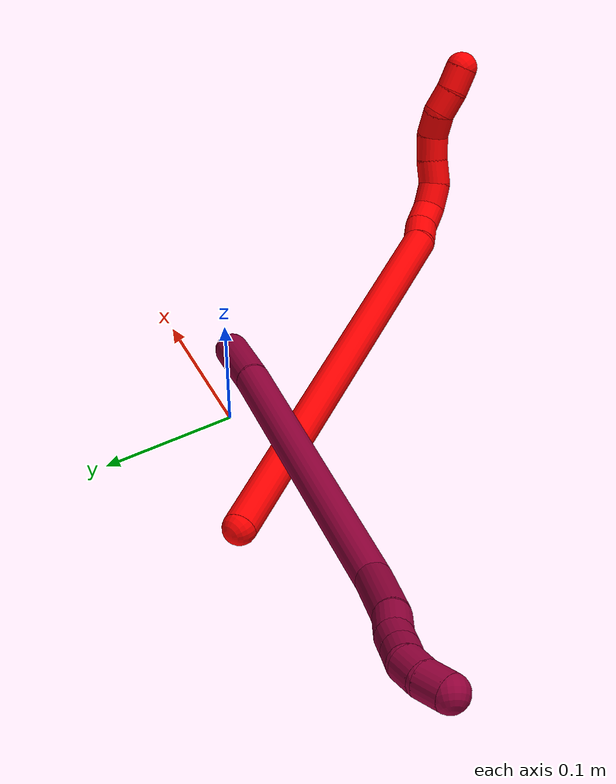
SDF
<sdf version="1.7">
 <world name="default">
  <model name="photoneo_s_sensor">
   <static>1</static>
   <pose>0 0 2 1.57079 1.57079 3.14159</pose>
   <link name="link">
    <inertial><mass>0.1</mass></inertial>
    <sensor name="sensor" type="depth">
     <update_rate>30</update_rate>
     <camera>
      <horizontal_fov>1.22</horizontal_fov>
      <image><width>1920</width><height>1200</height><format>B8G8R8</format></image>
      <clip><near>0.1</near><far>4</far></clip>
      <depth_camera><output>points</output></depth_camera>
     </camera>
     <plugin name="camera_plugin" filename="libgazebo_ros_depth_camera.so">
      <baseline>0.2</baseline>
      <alwaysOn>1</alwaysOn>
      <updateRate>0.0</updateRate>
      <cameraName>camera_ir</cameraName>
      <imageTopicName>/camera/color/image_raw</imageTopicName>
      <cameraInfoTopicName>/camera/color/camera_info</cameraInfoTopicName>
      <depthImageTopicName>/camera/depth/image_raw</depthImageTopicName>
      <depthImageCameraInfoTopicName>/camera/depth/camera_info</depthImageCameraInfoTopicName>
      <pointCloudTopicName>/camera/depth/points</pointCloudTopicName>
      <frameName>fr_optical</frameName>
      <pointCloudCutoff>0.1</pointCloudCutoff>
      <pointCloudCutoffMax>2.0</pointCloudCutoffMax>
      <distortionK1>0</distortionK1>
      <distortionK2>0</distortionK2>
      <distortionK3>0</distortionK3>
      <distortionT1>0</distortionT1>
      <distortionT2>0</distortionT2>
      <CxPrime>0</CxPrime>
      <Cx>0</Cx>
      <Cy>0</Cy>
      <focalLength>0</focalLength>
      <hackBaseline>0</hackBaseline>
     </plugin>
    </sensor>
   </link>
  </model>
  <model name="bin">
   <static>1</static>
   <link name="bottom">
    <collision name="collision-bottom">
     <pose>0 0 -0.01 0 -0 0</pose>
     <geometry><box><size>0.8 0.6 0.02</size></box></geometry>
     <surface>
      <friction><ode><mu>100</mu><mu2>100</mu2></ode></friction>
      <contact><collide_bitmask>65535</collide_bitmask></contact>
     </surface>
    </collision>
   </link>
   <link name="west_wall">
    <collision name="collision-west_wall">
     <pose>-0.41 0 0.1 0 -0 0</pose>
     <geometry><box><size>0.02 0.6 0.2</size></box></geometry>
     <surface>
      <friction><ode><mu>100</mu><mu2>100</mu2></ode></friction>
      <contact><collide_bitmask>65535</collide_bitmask></contact>
     </surface>
    </collision>
   </link>
   <link name="east_wall">
    <collision name="collision-east_wall">
     <pose>0.41 0 0.1 0 -0 0</pose>
     <geometry><box><size>0.02 0.6 0.2</size></box></geometry>
     <surface>
      <friction><ode><mu>100</mu><mu2>100</mu2></ode></friction>
      <contact><collide_bitmask>65535</collide_bitmask></contact>
     </surface>
    </collision>
   </link>
   <link name="south_wall">
    <collision name="collision-south_wall">
     <pose>0 -0.31 0.1 0 -0 0</pose>
     <geometry><box><size>0.8 0.02 0.2</size></box></geometry>
     <surface>
      <friction><ode><mu>100</mu><mu2>100</mu2></ode></friction>
      <contact><collide_bitmask>65535</collide_bitmask></contact>
     </surface>
    </collision>
   </link>
   <link name="north_wall">
    <collision name="collision-north_wall">
     <pose>0 0.31 0.1 0 -0 0</pose>
     <geometry><box><size>0.8 0.02 0.2</size></box></geometry>
     <surface>
      <friction><ode><mu>100</mu><mu2>100</mu2></ode></friction>
      <contact><collide_bitmask>65535</collide_bitmask></contact>
     </surface>
    </collision>
   </link>
  </model>
  <model name="2">
   <static>0</static>
   <link name="2">
    <collision name="collision-cylinder-e_1_1_4">
     <pose>0.007255 -0.048314 0.161573 0.290561 0.042992 0.006291</pose>
     <geometry><cylinder><radius>0.0125</radius><length>0.337596</length></cylinder></geometry>
     <surface>
      <friction><ode><mu>1.16</mu><mu2>1.16</mu2><slip1>0</slip1><slip2>0</slip2></ode></friction>
      <contact><ode><kp>1e+06</kp><kd>1</kd><max_vel>0</max_vel><min_depth>0.001</min_depth></ode></contact>
     </surface>
    </collision>
    <visual name="visual-cylinder-e_1_1_4">
     <pose>0.007255 -0.048314 0.161573 0.290561 0.042992 0.006291</pose>
     <geometry><cylinder><radius>0.0125</radius><length>0.337596</length></cylinder></geometry>
     <material><ambient>1 0 0 1</ambient></material>
    </visual>
    <collision name="collision-cylinder-e_2_4_5">
     <pose>0.014429 -0.102456 0.331988 0.582765 -0.007633 -0.002289</pose>
     <geometry><cylinder><radius>0.0125</radius><length>0.021178</length></cylinder></geometry>
     <surface>
      <friction><ode><mu>1.16</mu><mu2>1.16</mu2><slip1>0</slip1><slip2>0</slip2></ode></friction>
      <contact><ode><kp>1e+06</kp><kd>1</kd><max_vel>0</max_vel><min_depth>0.001</min_depth></ode></contact>
     </surface>
    </collision>
    <visual name="visual-cylinder-e_2_4_5">
     <pose>0.014429 -0.102456 0.331988 0.582765 -0.007633 -0.002289</pose>
     <geometry><cylinder><radius>0.0125</radius><length>0.021178</length></cylinder></geometry>
     <material><ambient>1 0 0 1</ambient></material>
    </visual>
    <collision name="collision-cylinder-e_3_5_6">
     <pose>0.016499 -0.11182 0.350167 0.362 0.212154 0.038966</pose>
     <geometry><cylinder><radius>0.0125</radius><length>0.02043</length></cylinder></geometry>
     <surface>
      <friction><ode><mu>1.16</mu><mu2>1.16</mu2><slip1>0</slip1><slip2>0</slip2></ode></friction>
      <contact><ode><kp>1e+06</kp><kd>1</kd><max_vel>0</max_vel><min_depth>0.001</min_depth></ode></contact>
     </surface>
    </collision>
    <visual name="visual-cylinder-e_3_5_6">
     <pose>0.016499 -0.11182 0.350167 0.362 0.212154 0.038966</pose>
     <geometry><cylinder><radius>0.0125</radius><length>0.02043</length></cylinder></geometry>
     <material><ambient>1 0 0 1</ambient></material>
    </visual>
    <collision name="collision-cylinder-e_4_6_7">
     <pose>0.025482 -0.118273 0.366738 0.383395 0.7195 0.145736</pose>
     <geometry><cylinder><radius>0.0125</radius><length>0.020735</length></cylinder></geometry>
     <surface>
      <friction><ode><mu>1.16</mu><mu2>1.16</mu2><slip1>0</slip1><slip2>0</slip2></ode></friction>
      <contact><ode><kp>1e+06</kp><kd>1</kd><max_vel>0</max_vel><min_depth>0.001</min_depth></ode></contact>
     </surface>
    </collision>
    <visual name="visual-cylinder-e_4_6_7">
     <pose>0.025482 -0.118273 0.366738 0.383395 0.7195 0.145736</pose>
     <geometry><cylinder><radius>0.0125</radius><length>0.020735</length></cylinder></geometry>
     <material><ambient>1 0 0 1</ambient></material>
    </visual>
    <collision name="collision-cylinder-e_5_7_8">
     <pose>0.040792 -0.125431 0.377166 0.924945 1.01118 0.53855</pose>
     <geometry><cylinder><radius>0.0125</radius><length>0.020006</length></cylinder></geometry>
     <surface>
      <friction><ode><mu>1.16</mu><mu2>1.16</mu2><slip1>0</slip1><slip2>0</slip2></ode></friction>
      <contact><ode><kp>1e+06</kp><kd>1</kd><max_vel>0</max_vel><min_depth>0.001</min_depth></ode></contact>
     </surface>
    </collision>
    <visual name="visual-cylinder-e_5_7_8">
     <pose>0.040792 -0.125431 0.377166 0.924945 1.01118 0.53855</pose>
     <geometry><cylinder><radius>0.0125</radius><length>0.020006</length></cylinder></geometry>
     <material><ambient>1 0 0 1</ambient></material>
    </visual>
    <collision name="collision-cylinder-e_6_8_9">
     <pose>0.058196 -0.13262 0.383788 0.710652 1.10214 0.448442</pose>
     <geometry><cylinder><radius>0.0125</radius><length>0.020013</length></cylinder></geometry>
     <surface>
      <friction><ode><mu>1.16</mu><mu2>1.16</mu2><slip1>0</slip1><slip2>0</slip2></ode></friction>
      <contact><ode><kp>1e+06</kp><kd>1</kd><max_vel>0</max_vel><min_depth>0.001</min_depth></ode></contact>
     </surface>
    </collision>
    <visual name="visual-cylinder-e_6_8_9">
     <pose>0.058196 -0.13262 0.383788 0.710652 1.10214 0.448442</pose>
     <geometry><cylinder><radius>0.0125</radius><length>0.020013</length></cylinder></geometry>
     <material><ambient>1 0 0 1</ambient></material>
    </visual>
    <collision name="collision-cylinder-e_7_9_10">
     <pose>0.076742 -0.134965 0.389942 -0.217541 1.28797 -0.163602</pose>
     <geometry><cylinder><radius>0.0125</radius><length>0.020032</length></cylinder></geometry>
     <surface>
      <friction><ode><mu>1.16</mu><mu2>1.16</mu2><slip1>0</slip1><slip2>0</slip2></ode></friction>
      <contact><ode><kp>1e+06</kp><kd>1</kd><max_vel>0</max_vel><min_depth>0.001</min_depth></ode></contact>
     </surface>
    </collision>
    <visual name="visual-cylinder-e_7_9_10">
     <pose>0.076742 -0.134965 0.389942 -0.217541 1.28797 -0.163602</pose>
     <geometry><cylinder><radius>0.0125</radius><length>0.020032</length></cylinder></geometry>
     <material><ambient>1 0 0 1</ambient></material>
    </visual>
    <collision name="collision-cylinder-e_8_10_11">
     <pose>0.094232 -0.133085 0.398705 -0.208584 0.906252 -0.101845</pose>
     <geometry><cylinder><radius>0.0125</radius><length>0.020002</length></cylinder></geometry>
     <surface>
      <friction><ode><mu>1.16</mu><mu2>1.16</mu2><slip1>0</slip1><slip2>0</slip2></ode></friction>
      <contact><ode><kp>1e+06</kp><kd>1</kd><max_vel>0</max_vel><min_depth>0.001</min_depth></ode></contact>
     </surface>
    </collision>
    <visual name="visual-cylinder-e_8_10_11">
     <pose>0.094232 -0.133085 0.398705 -0.208584 0.906252 -0.101845</pose>
     <geometry><cylinder><radius>0.0125</radius><length>0.020002</length></cylinder></geometry>
     <material><ambient>1 0 0 1</ambient></material>
    </visual>
    <collision name="collision-cylinder-e_9_11_2">
     <pose>0.10987 -0.132155 0.411037 0.055144 0.888665 0.026258</pose>
     <geometry><cylinder><radius>0.0125</radius><length>0.020008</length></cylinder></geometry>
     <surface>
      <friction><ode><mu>1.16</mu><mu2>1.16</mu2><slip1>0</slip1><slip2>0</slip2></ode></friction>
      <contact><ode><kp>1e+06</kp><kd>1</kd><max_vel>0</max_vel><min_depth>0.001</min_depth></ode></contact>
     </surface>
    </collision>
    <visual name="visual-cylinder-e_9_11_2">
     <pose>0.10987 -0.132155 0.411037 0.055144 0.888665 0.026258</pose>
     <geometry><cylinder><radius>0.0125</radius><length>0.020008</length></cylinder></geometry>
     <material><ambient>1 0 0 1</ambient></material>
    </visual>
    <collision name="collision-sphere-2">
     <pose>0.117636 -0.132503 0.417334 0 -0 0</pose>
     <geometry><sphere><radius>0.0125</radius></sphere></geometry>
     <surface>
      <friction><ode><mu>1.16</mu><mu2>1.16</mu2><slip1>0</slip1><slip2>0</slip2></ode></friction>
      <contact><ode><kp>1e+06</kp><kd>1</kd><max_vel>0</max_vel><min_depth>0.001</min_depth></ode></contact>
     </surface>
    </collision>
    <visual name="visual-sphere-2">
     <pose>0.117636 -0.132503 0.417334 0 -0 0</pose>
     <geometry><sphere><radius>0.0125</radius></sphere></geometry>
     <material><ambient>1 0 0 1</ambient></material>
    </visual>
    <collision name="collision-sphere-11">
     <pose>0.102105 -0.131807 0.404739 0 -0 0</pose>
     <geometry><sphere><radius>0.0125</radius></sphere></geometry>
     <surface>
      <friction><ode><mu>1.16</mu><mu2>1.16</mu2><slip1>0</slip1><slip2>0</slip2></ode></friction>
      <contact><ode><kp>1e+06</kp><kd>1</kd><max_vel>0</max_vel><min_depth>0.001</min_depth></ode></contact>
     </surface>
    </collision>
    <visual name="visual-sphere-11">
     <pose>0.102105 -0.131807 0.404739 0 -0 0</pose>
     <geometry><sphere><radius>0.0125</radius></sphere></geometry>
     <material><ambient>1 0 0 1</ambient></material>
    </visual>
    <collision name="collision-sphere-10">
     <pose>0.08636 -0.134362 0.392672 0 -0 0</pose>
     <geometry><sphere><radius>0.0125</radius></sphere></geometry>
     <surface>
      <friction><ode><mu>1.16</mu><mu2>1.16</mu2><slip1>0</slip1><slip2>0</slip2></ode></friction>
      <contact><ode><kp>1e+06</kp><kd>1</kd><max_vel>0</max_vel><min_depth>0.001</min_depth></ode></contact>
     </surface>
    </collision>
    <visual name="visual-sphere-10">
     <pose>0.08636 -0.134362 0.392672 0 -0 0</pose>
     <geometry><sphere><radius>0.0125</radius></sphere></geometry>
     <material><ambient>1 0 0 1</ambient></material>
    </visual>
    <collision name="collision-sphere-9">
     <pose>0.067124 -0.135568 0.387213 0 -0 0</pose>
     <geometry><sphere><radius>0.0125</radius></sphere></geometry>
     <surface>
      <friction><ode><mu>1.16</mu><mu2>1.16</mu2><slip1>0</slip1><slip2>0</slip2></ode></friction>
      <contact><ode><kp>1e+06</kp><kd>1</kd><max_vel>0</max_vel><min_depth>0.001</min_depth></ode></contact>
     </surface>
    </collision>
    <visual name="visual-sphere-9">
     <pose>0.067124 -0.135568 0.387213 0 -0 0</pose>
     <geometry><sphere><radius>0.0125</radius></sphere></geometry>
     <material><ambient>1 0 0 1</ambient></material>
    </visual>
    <collision name="collision-sphere-4">
     <pose>0.01451 -0.096629 0.323147 0 -0 0</pose>
     <geometry><sphere><radius>0.0125</radius></sphere></geometry>
     <surface>
      <friction><ode><mu>1.16</mu><mu2>1.16</mu2><slip1>0</slip1><slip2>0</slip2></ode></friction>
      <contact><ode><kp>1e+06</kp><kd>1</kd><max_vel>0</max_vel><min_depth>0.001</min_depth></ode></contact>
     </surface>
    </collision>
    <visual name="visual-sphere-4">
     <pose>0.01451 -0.096629 0.323147 0 -0 0</pose>
     <geometry><sphere><radius>0.0125</radius></sphere></geometry>
     <material><ambient>1 0 0 1</ambient></material>
    </visual>
    <collision name="collision-sphere-1">
     <geometry><sphere><radius>0.0125</radius></sphere></geometry>
     <surface>
      <friction><ode><mu>1.16</mu><mu2>1.16</mu2><slip1>0</slip1><slip2>0</slip2></ode></friction>
      <contact><ode><kp>1e+06</kp><kd>1</kd><max_vel>0</max_vel><min_depth>0.001</min_depth></ode></contact>
     </surface>
    </collision>
    <visual name="visual-sphere-1">
     <geometry><sphere><radius>0.0125</radius></sphere></geometry>
     <material><ambient>1 0 0 1</ambient></material>
    </visual>
    <collision name="collision-sphere-8">
     <pose>0.049269 -0.129672 0.380362 0 -0 0</pose>
     <geometry><sphere><radius>0.0125</radius></sphere></geometry>
     <surface>
      <friction><ode><mu>1.16</mu><mu2>1.16</mu2><slip1>0</slip1><slip2>0</slip2></ode></friction>
      <contact><ode><kp>1e+06</kp><kd>1</kd><max_vel>0</max_vel><min_depth>0.001</min_depth></ode></contact>
     </surface>
    </collision>
    <visual name="visual-sphere-8">
     <pose>0.049269 -0.129672 0.380362 0 -0 0</pose>
     <geometry><sphere><radius>0.0125</radius></sphere></geometry>
     <material><ambient>1 0 0 1</ambient></material>
    </visual>
    <collision name="collision-sphere-5">
     <pose>0.014348 -0.108283 0.340829 0 -0 0</pose>
     <geometry><sphere><radius>0.0125</radius></sphere></geometry>
     <surface>
      <friction><ode><mu>1.16</mu><mu2>1.16</mu2><slip1>0</slip1><slip2>0</slip2></ode></friction>
      <contact><ode><kp>1e+06</kp><kd>1</kd><max_vel>0</max_vel><min_depth>0.001</min_depth></ode></contact>
     </surface>
    </collision>
    <visual name="visual-sphere-5">
     <pose>0.014348 -0.108283 0.340829 0 -0 0</pose>
     <geometry><sphere><radius>0.0125</radius></sphere></geometry>
     <material><ambient>1 0 0 1</ambient></material>
    </visual>
    <collision name="collision-sphere-6">
     <pose>0.01865 -0.115356 0.359506 0 -0 0</pose>
     <geometry><sphere><radius>0.0125</radius></sphere></geometry>
     <surface>
      <friction><ode><mu>1.16</mu><mu2>1.16</mu2><slip1>0</slip1><slip2>0</slip2></ode></friction>
      <contact><ode><kp>1e+06</kp><kd>1</kd><max_vel>0</max_vel><min_depth>0.001</min_depth></ode></contact>
     </surface>
    </collision>
    <visual name="visual-sphere-6">
     <pose>0.01865 -0.115356 0.359506 0 -0 0</pose>
     <geometry><sphere><radius>0.0125</radius></sphere></geometry>
     <material><ambient>1 0 0 1</ambient></material>
    </visual>
    <collision name="collision-sphere-7">
     <pose>0.032315 -0.12119 0.37397 0 -0 0</pose>
     <geometry><sphere><radius>0.0125</radius></sphere></geometry>
     <surface>
      <friction><ode><mu>1.16</mu><mu2>1.16</mu2><slip1>0</slip1><slip2>0</slip2></ode></friction>
      <contact><ode><kp>1e+06</kp><kd>1</kd><max_vel>0</max_vel><min_depth>0.001</min_depth></ode></contact>
     </surface>
    </collision>
    <visual name="visual-sphere-7">
     <pose>0.032315 -0.12119 0.37397 0 -0 0</pose>
     <geometry><sphere><radius>0.0125</radius></sphere></geometry>
     <material><ambient>1 0 0 1</ambient></material>
    </visual>
    <inertial>
     <pose>0.022443 -0.072781 0.231144 0 -0 0</pose>
     <mass>0.5</mass>
     <inertia>
      <ixx>0.003254</ixx>
      <ixy>0</ixy>
      <ixz>0</ixz>
      <iyy>0.003107</iyy>
      <iyz>0</iyz>
      <izz>0.000811</izz>
     </inertia>
    </inertial>
   </link>
   <pose>-0.130794 0.054099 0.051167 2.56625 -1.41434 -0.602731</pose>
  </model>
  <model name="8">
   <static>0</static>
   <link name="8">
    <collision name="collision-cylinder-e_1_1_4">
     <pose>-0.020795 0.003692 0.023194 -0.15784 -0.724703 0.059942</pose>
     <geometry><cylinder><radius>0.0125</radius><length>0.062738</length></cylinder></geometry>
     <surface>
      <friction><ode><mu>1.16</mu><mu2>1.16</mu2><slip1>0</slip1><slip2>0</slip2></ode></friction>
      <contact><ode><kp>1e+06</kp><kd>1</kd><max_vel>0</max_vel><min_depth>0.001</min_depth></ode></contact>
     </surface>
    </collision>
    <visual name="visual-cylinder-e_1_1_4">
     <pose>-0.020795 0.003692 0.023194 -0.15784 -0.724703 0.059942</pose>
     <geometry><cylinder><radius>0.0125</radius><length>0.062738</length></cylinder></geometry>
     <material><ambient>0.584314 0 0.227451 1</ambient></material>
    </visual>
    <collision name="collision-cylinder-e_2_4_5">
     <pose>-0.115254 0.028324 0.15448 -0.191364 -0.589656 0.058275</pose>
     <geometry><cylinder><radius>0.0125</radius><length>0.264945</length></cylinder></geometry>
     <surface>
      <friction><ode><mu>1.16</mu><mu2>1.16</mu2><slip1>0</slip1><slip2>0</slip2></ode></friction>
      <contact><ode><kp>1e+06</kp><kd>1</kd><max_vel>0</max_vel><min_depth>0.001</min_depth></ode></contact>
     </surface>
    </collision>
    <visual name="visual-cylinder-e_2_4_5">
     <pose>-0.115254 0.028324 0.15448 -0.191364 -0.589656 0.058275</pose>
     <geometry><cylinder><radius>0.0125</radius><length>0.264945</length></cylinder></geometry>
     <material><ambient>0.584314 0 0.227451 1</ambient></material>
    </visual>
    <collision name="collision-cylinder-e_3_5_6">
     <pose>-0.214786 0.048119 0.284444 0.052377 -0.868205 -0.024286</pose>
     <geometry><cylinder><radius>0.0125</radius><length>0.06779</length></cylinder></geometry>
     <surface>
      <friction><ode><mu>1.16</mu><mu2>1.16</mu2><slip1>0</slip1><slip2>0</slip2></ode></friction>
      <contact><ode><kp>1e+06</kp><kd>1</kd><max_vel>0</max_vel><min_depth>0.001</min_depth></ode></contact>
     </surface>
    </collision>
    <visual name="visual-cylinder-e_3_5_6">
     <pose>-0.214786 0.048119 0.284444 0.052377 -0.868205 -0.024286</pose>
     <geometry><cylinder><radius>0.0125</radius><length>0.06779</length></cylinder></geometry>
     <material><ambient>0.584314 0 0.227451 1</ambient></material>
    </visual>
    <collision name="collision-cylinder-e_4_6_7">
     <pose>-0.248637 0.045214 0.315369 0.191874 -0.713565 -0.071708</pose>
     <geometry><cylinder><radius>0.0125</radius><length>0.024393</length></cylinder></geometry>
     <surface>
      <friction><ode><mu>1.16</mu><mu2>1.16</mu2><slip1>0</slip1><slip2>0</slip2></ode></friction>
      <contact><ode><kp>1e+06</kp><kd>1</kd><max_vel>0</max_vel><min_depth>0.001</min_depth></ode></contact>
     </surface>
    </collision>
    <visual name="visual-cylinder-e_4_6_7">
     <pose>-0.248637 0.045214 0.315369 0.191874 -0.713565 -0.071708</pose>
     <geometry><cylinder><radius>0.0125</radius><length>0.024393</length></cylinder></geometry>
     <material><ambient>0.584314 0 0.227451 1</ambient></material>
    </visual>
    <collision name="collision-cylinder-e_5_7_8">
     <pose>-0.263881 0.043347 0.331322 0.015769 -0.810728 -0.006767</pose>
     <geometry><cylinder><radius>0.0125</radius><length>0.020037</length></cylinder></geometry>
     <surface>
      <friction><ode><mu>1.16</mu><mu2>1.16</mu2><slip1>0</slip1><slip2>0</slip2></ode></friction>
      <contact><ode><kp>1e+06</kp><kd>1</kd><max_vel>0</max_vel><min_depth>0.001</min_depth></ode></contact>
     </surface>
    </collision>
    <visual name="visual-cylinder-e_5_7_8">
     <pose>-0.263881 0.043347 0.331322 0.015769 -0.810728 -0.006767</pose>
     <geometry><cylinder><radius>0.0125</radius><length>0.020037</length></cylinder></geometry>
     <material><ambient>0.584314 0 0.227451 1</ambient></material>
    </visual>
    <collision name="collision-cylinder-e_6_8_9">
     <pose>-0.278676 0.042763 0.344848 0.07161 -0.848269 -0.032346</pose>
     <geometry><cylinder><radius>0.0125</radius><length>0.020086</length></cylinder></geometry>
     <surface>
      <friction><ode><mu>1.16</mu><mu2>1.16</mu2><slip1>0</slip1><slip2>0</slip2></ode></friction>
      <contact><ode><kp>1e+06</kp><kd>1</kd><max_vel>0</max_vel><min_depth>0.001</min_depth></ode></contact>
     </surface>
    </collision>
    <visual name="visual-cylinder-e_6_8_9">
     <pose>-0.278676 0.042763 0.344848 0.07161 -0.848269 -0.032346</pose>
     <geometry><cylinder><radius>0.0125</radius><length>0.020086</length></cylinder></geometry>
     <material><ambient>0.584314 0 0.227451 1</ambient></material>
    </visual>
    <collision name="collision-cylinder-e_7_9_10">
     <pose>-0.292539 0.045472 0.358538 -0.423439 -0.6848 0.152928</pose>
     <geometry><cylinder><radius>0.0125</radius><length>0.020012</length></cylinder></geometry>
     <surface>
      <friction><ode><mu>1.16</mu><mu2>1.16</mu2><slip1>0</slip1><slip2>0</slip2></ode></friction>
      <contact><ode><kp>1e+06</kp><kd>1</kd><max_vel>0</max_vel><min_depth>0.001</min_depth></ode></contact>
     </surface>
    </collision>
    <visual name="visual-cylinder-e_7_9_10">
     <pose>-0.292539 0.045472 0.358538 -0.423439 -0.6848 0.152928</pose>
     <geometry><cylinder><radius>0.0125</radius><length>0.020012</length></cylinder></geometry>
     <material><ambient>0.584314 0 0.227451 1</ambient></material>
    </visual>
    <collision name="collision-cylinder-e_8_10_2">
     <pose>-0.304141 0.05435 0.37191 -0.734351 -0.555451 0.218431</pose>
     <geometry><cylinder><radius>0.0125</radius><length>0.02</length></cylinder></geometry>
     <surface>
      <friction><ode><mu>1.16</mu><mu2>1.16</mu2><slip1>0</slip1><slip2>0</slip2></ode></friction>
      <contact><ode><kp>1e+06</kp><kd>1</kd><max_vel>0</max_vel><min_depth>0.001</min_depth></ode></contact>
     </surface>
    </collision>
    <visual name="visual-cylinder-e_8_10_2">
     <pose>-0.304141 0.05435 0.37191 -0.734351 -0.555451 0.218431</pose>
     <geometry><cylinder><radius>0.0125</radius><length>0.02</length></cylinder></geometry>
     <material><ambient>0.584314 0 0.227451 1</ambient></material>
    </visual>
    <collision name="collision-sphere-2">
     <pose>-0.309414 0.060044 0.378217 0 -0 0</pose>
     <geometry><sphere><radius>0.0125</radius></sphere></geometry>
     <surface>
      <friction><ode><mu>1.16</mu><mu2>1.16</mu2><slip1>0</slip1><slip2>0</slip2></ode></friction>
      <contact><ode><kp>1e+06</kp><kd>1</kd><max_vel>0</max_vel><min_depth>0.001</min_depth></ode></contact>
     </surface>
    </collision>
    <visual name="visual-sphere-2">
     <pose>-0.309414 0.060044 0.378217 0 -0 0</pose>
     <geometry><sphere><radius>0.0125</radius></sphere></geometry>
     <material><ambient>0.584314 0 0.227451 1</ambient></material>
    </visual>
    <collision name="collision-sphere-10">
     <pose>-0.298868 0.048656 0.365604 0 -0 0</pose>
     <geometry><sphere><radius>0.0125</radius></sphere></geometry>
     <surface>
      <friction><ode><mu>1.16</mu><mu2>1.16</mu2><slip1>0</slip1><slip2>0</slip2></ode></friction>
      <contact><ode><kp>1e+06</kp><kd>1</kd><max_vel>0</max_vel><min_depth>0.001</min_depth></ode></contact>
     </surface>
    </collision>
    <visual name="visual-sphere-10">
     <pose>-0.298868 0.048656 0.365604 0 -0 0</pose>
     <geometry><sphere><radius>0.0125</radius></sphere></geometry>
     <material><ambient>0.584314 0 0.227451 1</ambient></material>
    </visual>
    <collision name="collision-sphere-9">
     <pose>-0.28621 0.042287 0.351472 0 -0 0</pose>
     <geometry><sphere><radius>0.0125</radius></sphere></geometry>
     <surface>
      <friction><ode><mu>1.16</mu><mu2>1.16</mu2><slip1>0</slip1><slip2>0</slip2></ode></friction>
      <contact><ode><kp>1e+06</kp><kd>1</kd><max_vel>0</max_vel><min_depth>0.001</min_depth></ode></contact>
     </surface>
    </collision>
    <visual name="visual-sphere-9">
     <pose>-0.28621 0.042287 0.351472 0 -0 0</pose>
     <geometry><sphere><radius>0.0125</radius></sphere></geometry>
     <material><ambient>0.584314 0 0.227451 1</ambient></material>
    </visual>
    <collision name="collision-sphere-4">
     <pose>-0.04159 0.007383 0.046387 0 -0 0</pose>
     <geometry><sphere><radius>0.0125</radius></sphere></geometry>
     <surface>
      <friction><ode><mu>1.16</mu><mu2>1.16</mu2><slip1>0</slip1><slip2>0</slip2></ode></friction>
      <contact><ode><kp>1e+06</kp><kd>1</kd><max_vel>0</max_vel><min_depth>0.001</min_depth></ode></contact>
     </surface>
    </collision>
    <visual name="visual-sphere-4">
     <pose>-0.04159 0.007383 0.046387 0 -0 0</pose>
     <geometry><sphere><radius>0.0125</radius></sphere></geometry>
     <material><ambient>0.584314 0 0.227451 1</ambient></material>
    </visual>
    <collision name="collision-sphere-1">
     <geometry><sphere><radius>0.0125</radius></sphere></geometry>
     <surface>
      <friction><ode><mu>1.16</mu><mu2>1.16</mu2><slip1>0</slip1><slip2>0</slip2></ode></friction>
      <contact><ode><kp>1e+06</kp><kd>1</kd><max_vel>0</max_vel><min_depth>0.001</min_depth></ode></contact>
     </surface>
    </collision>
    <visual name="visual-sphere-1">
     <geometry><sphere><radius>0.0125</radius></sphere></geometry>
     <material><ambient>0.584314 0 0.227451 1</ambient></material>
    </visual>
    <collision name="collision-sphere-8">
     <pose>-0.271142 0.043238 0.338224 0 -0 0</pose>
     <geometry><sphere><radius>0.0125</radius></sphere></geometry>
     <surface>
      <friction><ode><mu>1.16</mu><mu2>1.16</mu2><slip1>0</slip1><slip2>0</slip2></ode></friction>
      <contact><ode><kp>1e+06</kp><kd>1</kd><max_vel>0</max_vel><min_depth>0.001</min_depth></ode></contact>
     </surface>
    </collision>
    <visual name="visual-sphere-8">
     <pose>-0.271142 0.043238 0.338224 0 -0 0</pose>
     <geometry><sphere><radius>0.0125</radius></sphere></geometry>
     <material><ambient>0.584314 0 0.227451 1</ambient></material>
    </visual>
    <collision name="collision-sphere-5">
     <pose>-0.188919 0.049266 0.262572 0 -0 0</pose>
     <geometry><sphere><radius>0.0125</radius></sphere></geometry>
     <surface>
      <friction><ode><mu>1.16</mu><mu2>1.16</mu2><slip1>0</slip1><slip2>0</slip2></ode></friction>
      <contact><ode><kp>1e+06</kp><kd>1</kd><max_vel>0</max_vel><min_depth>0.001</min_depth></ode></contact>
     </surface>
    </collision>
    <visual name="visual-sphere-5">
     <pose>-0.188919 0.049266 0.262572 0 -0 0</pose>
     <geometry><sphere><radius>0.0125</radius></sphere></geometry>
     <material><ambient>0.584314 0 0.227451 1</ambient></material>
    </visual>
    <collision name="collision-sphere-6">
     <pose>-0.240654 0.046972 0.306317 0 -0 0</pose>
     <geometry><sphere><radius>0.0125</radius></sphere></geometry>
     <surface>
      <friction><ode><mu>1.16</mu><mu2>1.16</mu2><slip1>0</slip1><slip2>0</slip2></ode></friction>
      <contact><ode><kp>1e+06</kp><kd>1</kd><max_vel>0</max_vel><min_depth>0.001</min_depth></ode></contact>
     </surface>
    </collision>
    <visual name="visual-sphere-6">
     <pose>-0.240654 0.046972 0.306317 0 -0 0</pose>
     <geometry><sphere><radius>0.0125</radius></sphere></geometry>
     <material><ambient>0.584314 0 0.227451 1</ambient></material>
    </visual>
    <collision name="collision-sphere-7">
     <pose>-0.25662 0.043455 0.324421 0 -0 0</pose>
     <geometry><sphere><radius>0.0125</radius></sphere></geometry>
     <surface>
      <friction><ode><mu>1.16</mu><mu2>1.16</mu2><slip1>0</slip1><slip2>0</slip2></ode></friction>
      <contact><ode><kp>1e+06</kp><kd>1</kd><max_vel>0</max_vel><min_depth>0.001</min_depth></ode></contact>
     </surface>
    </collision>
    <visual name="visual-sphere-7">
     <pose>-0.25662 0.043455 0.324421 0 -0 0</pose>
     <geometry><sphere><radius>0.0125</radius></sphere></geometry>
     <material><ambient>0.584314 0 0.227451 1</ambient></material>
    </visual>
    <inertial>
     <pose>-0.150576 0.031651 0.195075 0 -0 0</pose>
     <mass>0.5</mass>
     <inertia>
      <ixx>0.001388</ixx>
      <ixy>0</ixy>
      <ixz>0</ixz>
      <iyy>0.001679</iyy>
      <iyz>0</iyz>
      <izz>0.00069</izz>
     </inertia>
    </inertial>
   </link>
   <pose>0.045713 -0.024897 0.017293 -2.71957 1.28989 0.057293</pose>
  </model>
 </world>
</sdf>
